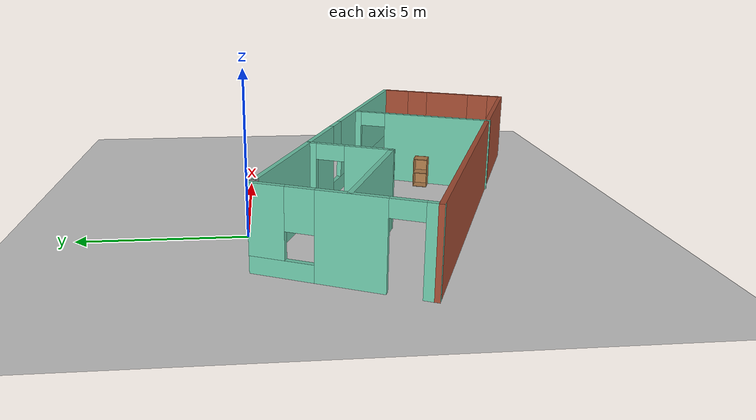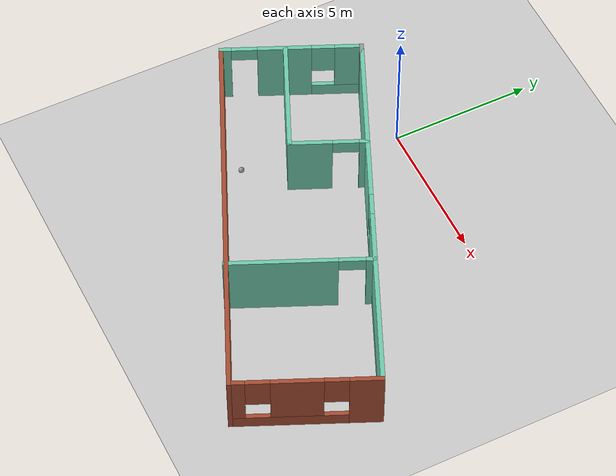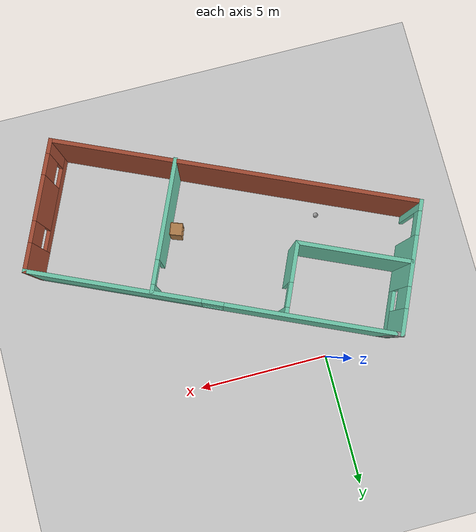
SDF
<sdf version="1.6">
 <world name="default">
  <plugin name="firsthello" filename="libfirsthello.so"/>
  <light name="sun" type="directional">
   <pose>0 0 10 0 -0 0</pose>
   <diffuse>0.8 0.8 0.8 1</diffuse>
   <specular>0.2 0.2 0.2 1</specular>
   <attenuation>
    <range>1000</range>
    <constant>0.9</constant>
    <linear>0.01</linear>
    <quadratic>0.001</quadratic>
   </attenuation>
   <direction>-0.5 0.1 -0.9</direction>
  </light>
  <model name="ground_plane">
   <static>1</static>
   <link name="link">
    <collision name="collision">
     <geometry><plane><normal>0 0 1</normal><size>100 100</size></plane></geometry>
     <surface>
      <contact><collide_bitmask>65535</collide_bitmask></contact>
      <friction><ode><mu>100</mu><mu2>50</mu2></ode></friction>
     </surface>
    </collision>
    <visual name="visual">
     <cast_shadows>0</cast_shadows>
     <geometry><plane><normal>0 0 1</normal><size>100 100</size></plane></geometry>
     <material>
      <script><uri>file://media/materials/scripts/gazebo.material</uri><name>Gazebo/Grey</name></script>
     </material>
    </visual>
   </link>
  </model>
  <gravity>0 0 -9.8</gravity>
  <magnetic_field>6e-06 2.3e-05 -4.2e-05</magnetic_field>
  <atmosphere type="adiabatic"/>
  <physics name="default_physics" default="0" type="ode">
   <max_step_size>0.001</max_step_size>
   <real_time_factor>1</real_time_factor>
   <real_time_update_rate>1000</real_time_update_rate>
  </physics>
  <scene><ambient>0.4 0.4 0.4 1</ambient><background>0.7 0.7 0.7 1</background><shadows>1</shadows></scene>
  <spherical_coordinates>
   <surface_model>EARTH_WGS84</surface_model>
   <latitude_deg>0</latitude_deg>
   <longitude_deg>0</longitude_deg>
   <elevation>0</elevation>
   <heading_deg>0</heading_deg>
  </spherical_coordinates>
  <model name="cabinet">
   <static>1</static>
   <link name="cabinet_bottom_plate">
    <inertial>
     <pose>0 0 -1 0 -0 0</pose>
     <inertia><ixx>2.05</ixx><ixy>0</ixy><ixz>0</ixz><iyy>2.05</iyy><iyz>0</iyz><izz>2.05</izz></inertia>
     <mass>25</mass>
    </inertial>
    <collision name="cabinet_bottom_plate_geom">
     <pose>0 0 0.01 0 -0 0</pose>
     <geometry><box><size>0.45 0.45 0.02</size></box></geometry>
    </collision>
    <visual name="cabinet_bottom_plate_geom_visual">
     <pose>0 0 0.01 0 -0 0</pose>
     <geometry><box><size>0.45 0.45 0.02</size></box></geometry>
     <material>
      <script><uri>file://media/materials/scripts/gazebo.material</uri><name>Gazebo/Wood</name></script>
     </material>
    </visual>
    <collision name="cabinet_bottom_plate_geom_cabinet_back_plate">
     <pose>0.235 0 0.51 0 -0 0</pose>
     <geometry><box><size>0.02 0.45 1.02</size></box></geometry>
    </collision>
    <visual name="cabinet_bottom_plate_geom_cabinet_back_plate_visual">
     <pose>0.235 0 0.51 0 -0 0</pose>
     <geometry><box><size>0.02 0.45 1.02</size></box></geometry>
     <material>
      <script><uri>file://media/materials/scripts/gazebo.material</uri><name>Gazebo/Wood</name></script>
     </material>
    </visual>
    <collision name="cabinet_bottom_plate_geom_cabinet_left_plate">
     <pose>0 0.235 0.51 0 -0 0</pose>
     <geometry><box><size>0.45 0.02 1.02</size></box></geometry>
    </collision>
    <visual name="cabinet_bottom_plate_geom_cabinet_left_plate_visual">
     <pose>0 0.235 0.51 0 -0 0</pose>
     <geometry><box><size>0.45 0.02 1.02</size></box></geometry>
     <material>
      <script><uri>file://media/materials/scripts/gazebo.material</uri><name>Gazebo/Wood</name></script>
     </material>
    </visual>
    <collision name="cabinet_bottom_plate_geom_cabinet_middle_plate">
     <pose>0 0 0.51 0 -0 0</pose>
     <geometry><box><size>0.45 0.45 0.02</size></box></geometry>
    </collision>
    <visual name="cabinet_bottom_plate_geom_cabinet_middle_plate_visual">
     <pose>0 0 0.51 0 -0 0</pose>
     <geometry><box><size>0.45 0.45 0.02</size></box></geometry>
     <material>
      <script><uri>file://media/materials/scripts/gazebo.material</uri><name>Gazebo/Wood</name></script>
     </material>
    </visual>
    <collision name="cabinet_bottom_plate_geom_cabinet_right_plate">
     <pose>0 -0.235 0.51 0 -0 0</pose>
     <geometry><box><size>0.45 0.02 1.02</size></box></geometry>
    </collision>
    <visual name="cabinet_bottom_plate_geom_cabinet_right_plate_visual">
     <pose>0 -0.235 0.51 0 -0 0</pose>
     <geometry><box><size>0.45 0.02 1.02</size></box></geometry>
     <material>
      <script><uri>file://media/materials/scripts/gazebo.material</uri><name>Gazebo/Wood</name></script>
     </material>
    </visual>
    <collision name="cabinet_bottom_plate_geom_cabinet_top_plate">
     <pose>0 0 1.01 0 -0 0</pose>
     <geometry><box><size>0.45 0.45 0.02</size></box></geometry>
    </collision>
    <visual name="cabinet_bottom_plate_geom_cabinet_top_plate_visual">
     <pose>0 0 1.01 0 -0 0</pose>
     <geometry><box><size>0.45 0.45 0.02</size></box></geometry>
     <material>
      <script><uri>file://media/materials/scripts/gazebo.material</uri><name>Gazebo/Wood</name></script>
     </material>
    </visual>
   </link>
   <pose>4.40987 -6.12646 0 0 0 -0.355784</pose>
  </model>
  <model name="Apartment1">
   <pose>3.53838 -3.4856 0 0 0 -0.417553</pose>
   <link name="Wall_12">
    <pose>0.125 0.5825 0 0 -0 0</pose>
    <visual name="Wall_12_Visual_0">
     <pose>-3.6375 0 1.25 0 -0 0</pose>
     <geometry><box><size>6.225 0.15 2.5</size></box></geometry>
     <material>
      <script><uri>file://media/materials/scripts/gazebo.material</uri><name>Gazebo/Grey</name></script>
      <ambient>0.435294 0.796078 0.67451 1</ambient>
     </material>
     <meta><layer>0</layer></meta>
    </visual>
    <collision name="Wall_12_Collision_0">
     <geometry><box><size>6.225 0.15 2.5</size></box></geometry>
     <pose>-3.6375 0 1.25 0 -0 0</pose>
    </collision>
    <visual name="Wall_12_Visual_1">
     <pose>3.1125 0 0.25 0 -0 0</pose>
     <geometry><box><size>7.275 0.15 0.5</size></box></geometry>
     <material>
      <script><uri>file://media/materials/scripts/gazebo.material</uri><name>Gazebo/Grey</name></script>
      <ambient>0.435294 0.796078 0.67451 1</ambient>
     </material>
     <meta><layer>0</layer></meta>
    </visual>
    <collision name="Wall_12_Collision_1">
     <geometry><box><size>7.275 0.15 0.5</size></box></geometry>
     <pose>3.1125 0 0.25 0 -0 0</pose>
    </collision>
    <visual name="Wall_12_Visual_2">
     <pose>3.5125 0 1.5 0 -0 0</pose>
     <geometry><box><size>6.475 0.15 2</size></box></geometry>
     <material>
      <script><uri>file://media/materials/scripts/gazebo.material</uri><name>Gazebo/Grey</name></script>
      <ambient>0.435294 0.796078 0.67451 1</ambient>
     </material>
     <meta><layer>0</layer></meta>
    </visual>
    <collision name="Wall_12_Collision_2">
     <geometry><box><size>6.475 0.15 2</size></box></geometry>
     <pose>3.5125 0 1.5 0 -0 0</pose>
    </collision>
    <visual name="Wall_12_Visual_3">
     <pose>-0.125 0 1.9 0 -0 0</pose>
     <geometry><box><size>0.8 0.15 1.2</size></box></geometry>
     <material>
      <script><uri>file://media/materials/scripts/gazebo.material</uri><name>Gazebo/Grey</name></script>
      <ambient>0.435294 0.796078 0.67451 1</ambient>
     </material>
     <meta><layer>0</layer></meta>
    </visual>
    <collision name="Wall_12_Collision_3">
     <geometry><box><size>0.8 0.15 1.2</size></box></geometry>
     <pose>-0.125 0 1.9 0 -0 0</pose>
    </collision>
   </link>
   <link name="Wall_13">
    <pose>6.8 -1.8425 0 0 -0 -1.5708</pose>
    <visual name="Wall_13_Visual_0">
     <pose>-1.9425 0 1.25 0 -0 0</pose>
     <geometry><box><size>1.115 0.15 2.5</size></box></geometry>
     <material>
      <script><uri>file://media/materials/scripts/gazebo.material</uri><name>Gazebo/Bricks</name></script>
      <ambient>1 1 1 1</ambient>
     </material>
     <meta><layer>0</layer></meta>
    </visual>
    <collision name="Wall_13_Collision_0">
     <geometry><box><size>1.115 0.15 2.5</size></box></geometry>
     <pose>-1.9425 0 1.25 0 -0 0</pose>
    </collision>
    <visual name="Wall_13_Visual_1">
     <pose>0.5575 0 0.25 0 -0 0</pose>
     <geometry><box><size>3.885 0.15 0.5</size></box></geometry>
     <material>
      <script><uri>file://media/materials/scripts/gazebo.material</uri><name>Gazebo/Bricks</name></script>
      <ambient>1 1 1 1</ambient>
     </material>
     <meta><layer>0</layer></meta>
    </visual>
    <collision name="Wall_13_Collision_1">
     <geometry><box><size>3.885 0.15 0.5</size></box></geometry>
     <pose>0.5575 0 0.25 0 -0 0</pose>
    </collision>
    <visual name="Wall_13_Visual_2">
     <pose>0.27 0 1.5 0 -0 0</pose>
     <geometry><box><size>1.71 0.15 2</size></box></geometry>
     <material>
      <script><uri>file://media/materials/scripts/gazebo.material</uri><name>Gazebo/Bricks</name></script>
      <ambient>1 1 1 1</ambient>
     </material>
     <meta><layer>0</layer></meta>
    </visual>
    <collision name="Wall_13_Collision_2">
     <geometry><box><size>1.71 0.15 2</size></box></geometry>
     <pose>0.27 0 1.5 0 -0 0</pose>
    </collision>
    <visual name="Wall_13_Visual_3">
     <pose>2.2125 0 1.5 0 -0 0</pose>
     <geometry><box><size>0.575 0.15 2</size></box></geometry>
     <material>
      <script><uri>file://media/materials/scripts/gazebo.material</uri><name>Gazebo/Bricks</name></script>
      <ambient>1 1 1 1</ambient>
     </material>
     <meta><layer>0</layer></meta>
    </visual>
    <collision name="Wall_13_Collision_3">
     <geometry><box><size>0.575 0.15 2</size></box></geometry>
     <pose>2.2125 0 1.5 0 -0 0</pose>
    </collision>
    <visual name="Wall_13_Visual_4">
     <pose>-0.985 0 1.9 0 -0 0</pose>
     <geometry><box><size>0.8 0.15 1.2</size></box></geometry>
     <material>
      <script><uri>file://media/materials/scripts/gazebo.material</uri><name>Gazebo/Bricks</name></script>
      <ambient>1 1 1 1</ambient>
     </material>
     <meta><layer>0</layer></meta>
    </visual>
    <collision name="Wall_13_Collision_4">
     <geometry><box><size>0.8 0.15 1.2</size></box></geometry>
     <pose>-0.985 0 1.9 0 -0 0</pose>
    </collision>
    <visual name="Wall_13_Visual_5">
     <pose>1.525 0 1.9 0 -0 0</pose>
     <geometry><box><size>0.8 0.15 1.2</size></box></geometry>
     <material>
      <script><uri>file://media/materials/scripts/gazebo.material</uri><name>Gazebo/Bricks</name></script>
      <ambient>1 1 1 1</ambient>
     </material>
     <meta><layer>0</layer></meta>
    </visual>
    <collision name="Wall_13_Collision_5">
     <geometry><box><size>0.8 0.15 1.2</size></box></geometry>
     <pose>1.525 0 1.9 0 -0 0</pose>
    </collision>
   </link>
   <link name="Wall_14">
    <collision name="Wall_14_Collision">
     <geometry><box><size>13.75 0.15 2.5</size></box></geometry>
     <pose>0 0 1.25 0 -0 0</pose>
    </collision>
    <visual name="Wall_14_Visual">
     <pose>0 0 1.25 0 -0 0</pose>
     <geometry><box><size>13.75 0.15 2.5</size></box></geometry>
     <material>
      <script><uri>file://media/materials/scripts/gazebo.material</uri><name>Gazebo/Bricks</name></script>
      <ambient>1 1 1 1</ambient>
     </material>
     <meta><layer>0</layer></meta>
    </visual>
    <pose>-0 -4.2675 0 0 -0 3.14159</pose>
   </link>
   <link name="Wall_15">
    <pose>-6.8 -1.8425 0 0 -0 1.5708</pose>
    <visual name="Wall_15_Visual_0">
     <pose>-2.2875 0 1.25 0 -0 0</pose>
     <geometry><box><size>0.425 0.15 2.5</size></box></geometry>
     <material>
      <script><uri>file://media/materials/scripts/gazebo.material</uri><name>Gazebo/Grey</name></script>
      <ambient>0.435294 0.796078 0.67451 1</ambient>
     </material>
     <meta><layer>0</layer></meta>
    </visual>
    <collision name="Wall_15_Collision_0">
     <geometry><box><size>0.425 0.15 2.5</size></box></geometry>
     <pose>-2.2875 0 1.25 0 -0 0</pose>
    </collision>
    <visual name="Wall_15_Visual_1">
     <pose>-0.24 0 1.25 0 -0 0</pose>
     <geometry><box><size>1.87 0.15 2.5</size></box></geometry>
     <material>
      <script><uri>file://media/materials/scripts/gazebo.material</uri><name>Gazebo/Grey</name></script>
      <ambient>0.435294 0.796078 0.67451 1</ambient>
     </material>
     <meta><layer>0</layer></meta>
    </visual>
    <collision name="Wall_15_Collision_1">
     <geometry><box><size>1.87 0.15 2.5</size></box></geometry>
     <pose>-0.24 0 1.25 0 -0 0</pose>
    </collision>
    <visual name="Wall_15_Visual_2">
     <pose>1.5975 0 0.25 0 -0 0</pose>
     <geometry><box><size>1.805 0.15 0.5</size></box></geometry>
     <material>
      <script><uri>file://media/materials/scripts/gazebo.material</uri><name>Gazebo/Grey</name></script>
      <ambient>0.435294 0.796078 0.67451 1</ambient>
     </material>
     <meta><layer>0</layer></meta>
    </visual>
    <collision name="Wall_15_Collision_2">
     <geometry><box><size>1.805 0.15 0.5</size></box></geometry>
     <pose>1.5975 0 0.25 0 -0 0</pose>
    </collision>
    <visual name="Wall_15_Visual_3">
     <pose>1.9975 0 1.5 0 -0 0</pose>
     <geometry><box><size>1.005 0.15 2</size></box></geometry>
     <material>
      <script><uri>file://media/materials/scripts/gazebo.material</uri><name>Gazebo/Grey</name></script>
      <ambient>0.435294 0.796078 0.67451 1</ambient>
     </material>
     <meta><layer>0</layer></meta>
    </visual>
    <collision name="Wall_15_Collision_3">
     <geometry><box><size>1.005 0.15 2</size></box></geometry>
     <pose>1.9975 0 1.5 0 -0 0</pose>
    </collision>
    <visual name="Wall_15_Visual_4">
     <pose>1.095 0 1.9 0 -0 0</pose>
     <geometry><box><size>0.8 0.15 1.2</size></box></geometry>
     <material>
      <script><uri>file://media/materials/scripts/gazebo.material</uri><name>Gazebo/Grey</name></script>
      <ambient>0.435294 0.796078 0.67451 1</ambient>
     </material>
     <meta><layer>0</layer></meta>
    </visual>
    <collision name="Wall_15_Collision_4">
     <geometry><box><size>0.8 0.15 1.2</size></box></geometry>
     <pose>1.095 0 1.9 0 -0 0</pose>
    </collision>
    <visual name="Wall_15_Visual_5">
     <pose>-1.625 0 2.25 0 -0 0</pose>
     <geometry><box><size>0.9 0.15 0.5</size></box></geometry>
     <material>
      <script><uri>file://media/materials/scripts/gazebo.material</uri><name>Gazebo/Grey</name></script>
      <ambient>0.435294 0.796078 0.67451 1</ambient>
     </material>
     <meta><layer>0</layer></meta>
    </visual>
    <collision name="Wall_15_Collision_5">
     <geometry><box><size>0.9 0.15 0.5</size></box></geometry>
     <pose>-1.625 0 2.25 0 -0 0</pose>
    </collision>
   </link>
   <link name="Wall_16">
    <collision name="Wall_16_Collision">
     <geometry><box><size>0.4 0.15 2.5</size></box></geometry>
     <pose>0 0 1.25 0 -0 0</pose>
    </collision>
    <visual name="Wall_16_Visual">
     <pose>0 0 1.25 0 -0 0</pose>
     <geometry><box><size>0.4 0.15 2.5</size></box></geometry>
     <material>
      <script><uri>file://media/materials/scripts/gazebo.material</uri><name>Gazebo/Grey</name></script>
      <ambient>1 1 1 1</ambient>
     </material>
     <meta><layer>0</layer></meta>
    </visual>
    <pose>-6.675 0.5825 0 0 -0 0</pose>
   </link>
   <link name="Wall_18">
    <collision name="Wall_18_Collision">
     <geometry><box><size>4.25 0.15 2.5</size></box></geometry>
     <pose>0 0 1.25 0 -0 0</pose>
    </collision>
    <visual name="Wall_18_Visual">
     <pose>0 0 1.25 0 -0 0</pose>
     <geometry><box><size>4.25 0.15 2.5</size></box></geometry>
     <material>
      <script><uri>file://media/materials/scripts/gazebo.material</uri><name>Gazebo/Grey</name></script>
      <ambient>0.435294 0.796078 0.67451 1</ambient>
     </material>
     <meta><layer>0</layer></meta>
    </visual>
    <pose>-4.69 -2.0475 0 0 -0 0</pose>
   </link>
   <link name="Wall_19">
    <pose>-2.64 -0.7475 0 0 -0 1.5708</pose>
    <visual name="Wall_19_Visual_0">
     <pose>-0.6125 0 1.25 0 -0 0</pose>
     <geometry><box><size>1.525 0.15 2.5</size></box></geometry>
     <material>
      <script><uri>file://media/materials/scripts/gazebo.material</uri><name>Gazebo/Grey</name></script>
      <ambient>0.435294 0.796078 0.67451 1</ambient>
     </material>
     <meta><layer>0</layer></meta>
    </visual>
    <collision name="Wall_19_Collision_0">
     <geometry><box><size>1.525 0.15 2.5</size></box></geometry>
     <pose>-0.6125 0 1.25 0 -0 0</pose>
    </collision>
    <visual name="Wall_19_Visual_1">
     <pose>1.2125 0 1.25 0 -0 0</pose>
     <geometry><box><size>0.325 0.15 2.5</size></box></geometry>
     <material>
      <script><uri>file://media/materials/scripts/gazebo.material</uri><name>Gazebo/Grey</name></script>
      <ambient>0.435294 0.796078 0.67451 1</ambient>
     </material>
     <meta><layer>0</layer></meta>
    </visual>
    <collision name="Wall_19_Collision_1">
     <geometry><box><size>0.325 0.15 2.5</size></box></geometry>
     <pose>1.2125 0 1.25 0 -0 0</pose>
    </collision>
    <visual name="Wall_19_Visual_2">
     <pose>0.6 0 2.25 0 -0 0</pose>
     <geometry><box><size>0.9 0.15 0.5</size></box></geometry>
     <material>
      <script><uri>file://media/materials/scripts/gazebo.material</uri><name>Gazebo/Grey</name></script>
      <ambient>0.435294 0.796078 0.67451 1</ambient>
     </material>
     <meta><layer>0</layer></meta>
    </visual>
    <collision name="Wall_19_Collision_2">
     <geometry><box><size>0.9 0.15 0.5</size></box></geometry>
     <pose>0.6 0 2.25 0 -0 0</pose>
    </collision>
   </link>
   <link name="Wall_21">
    <pose>2.2 -1.8825 0 0 -0 -1.5708</pose>
    <visual name="Wall_21_Visual_0">
     <pose>-2.3375 0 1.25 0 -0 0</pose>
     <geometry><box><size>0.325 0.15 2.5</size></box></geometry>
     <material>
      <script><uri>file://media/materials/scripts/gazebo.material</uri><name>Gazebo/Grey</name></script>
      <ambient>0.435294 0.796078 0.67451 1</ambient>
     </material>
     <meta><layer>0</layer></meta>
    </visual>
    <collision name="Wall_21_Collision_0">
     <geometry><box><size>0.325 0.15 2.5</size></box></geometry>
     <pose>-2.3375 0 1.25 0 -0 0</pose>
    </collision>
    <visual name="Wall_21_Visual_1">
     <pose>0.6125 0 1.25 0 -0 0</pose>
     <geometry><box><size>3.775 0.15 2.5</size></box></geometry>
     <material>
      <script><uri>file://media/materials/scripts/gazebo.material</uri><name>Gazebo/Grey</name></script>
      <ambient>0.435294 0.796078 0.67451 1</ambient>
     </material>
     <meta><layer>0</layer></meta>
    </visual>
    <collision name="Wall_21_Collision_1">
     <geometry><box><size>3.775 0.15 2.5</size></box></geometry>
     <pose>0.6125 0 1.25 0 -0 0</pose>
    </collision>
    <visual name="Wall_21_Visual_2">
     <pose>-1.725 0 2.25 0 -0 0</pose>
     <geometry><box><size>0.9 0.15 0.5</size></box></geometry>
     <material>
      <script><uri>file://media/materials/scripts/gazebo.material</uri><name>Gazebo/Grey</name></script>
      <ambient>0.435294 0.796078 0.67451 1</ambient>
     </material>
     <meta><layer>0</layer></meta>
    </visual>
    <collision name="Wall_21_Collision_2">
     <geometry><box><size>0.9 0.15 0.5</size></box></geometry>
     <pose>-1.725 0 2.25 0 -0 0</pose>
    </collision>
   </link>
   <static>1</static>
  </model>
  <model name="my_ball">
   <link name="link_0">
    <inertial>
     <mass>1</mass>
     <inertia><ixx>0.1</ixx><ixy>0</ixy><ixz>0</ixz><iyy>0.1</iyy><iyz>0</iyz><izz>0.1</izz></inertia>
     <pose>0 0 0.1 0 -0 0</pose>
    </inertial>
    <pose>0 0 0.097377 0 -0 0</pose>
    <visual name="visual">
     <geometry><sphere><radius>0.1</radius></sphere></geometry>
     <material>
      <lighting>1</lighting>
      <script><uri>file://media/materials/scripts/gazebo.material</uri><name>Gazebo/Grey</name></script>
      <shader type="pixel"><normal_map>__default__</normal_map></shader>
      <ambient>1 1 1 1</ambient>
      <diffuse>1 1 1 1</diffuse>
      <specular>1 1 1 1</specular>
      <emissive>1 1 1 1</emissive>
     </material>
    </visual>
    <collision name="collision">
     <geometry><sphere><radius>0.1</radius></sphere></geometry>
     <surface>
      <friction>
       <ode><mu>1</mu><mu2>1</mu2><fdir1>0 0 0</fdir1><slip1>0</slip1><slip2>0</slip2></ode>
       <torsional>
        <coefficient>1</coefficient>
        <patch_radius>0</patch_radius>
        <surface_radius>0</surface_radius>
        <use_patch_radius>1</use_patch_radius>
        <ode><slip>0</slip></ode>
       </torsional>
      </friction>
      <bounce><restitution_coefficient>0</restitution_coefficient><threshold>1e+06</threshold></bounce>
      <contact>
       <collide_without_contact>0</collide_without_contact>
       <collide_without_contact_bitmask>1</collide_without_contact_bitmask>
       <collide_bitmask>1</collide_bitmask>
       <ode>
        <soft_cfm>0</soft_cfm>
        <soft_erp>0.2</soft_erp>
        <kp>1e+13</kp>
        <kd>1</kd>
        <max_vel>0.01</max_vel>
        <min_depth>0</min_depth>
       </ode>
       <bullet>
        <split_impulse>1</split_impulse>
        <split_impulse_penetration_threshold>-0.01</split_impulse_penetration_threshold>
        <soft_cfm>0</soft_cfm>
        <soft_erp>0.2</soft_erp>
        <kp>1e+13</kp>
        <kd>1</kd>
       </bullet>
      </contact>
     </surface>
    </collision>
   </link>
   <static>0</static>
   <pose>-1.06236 -5.48067 0.002623 0 -0 0</pose>
  </model>
 </world>
</sdf>
